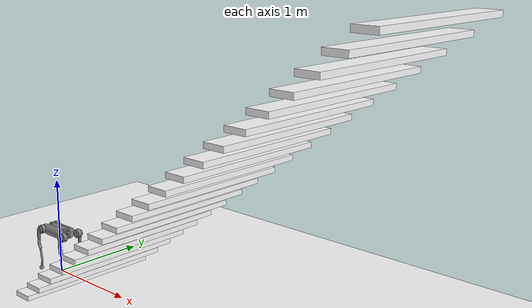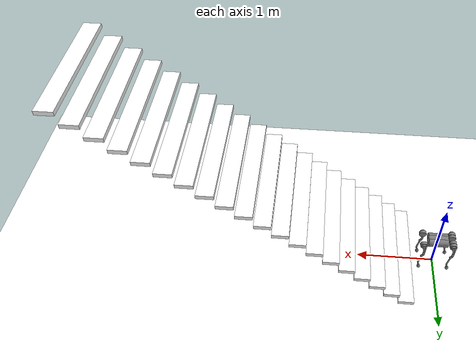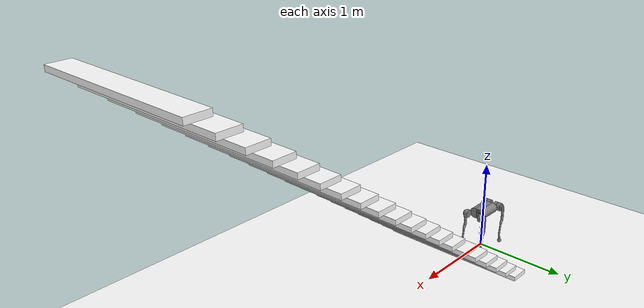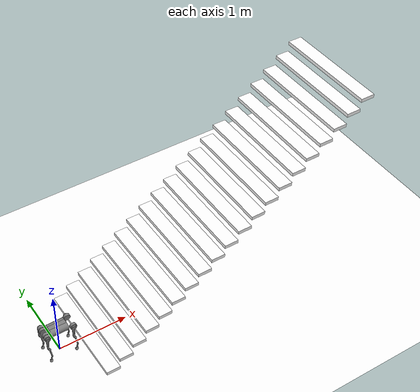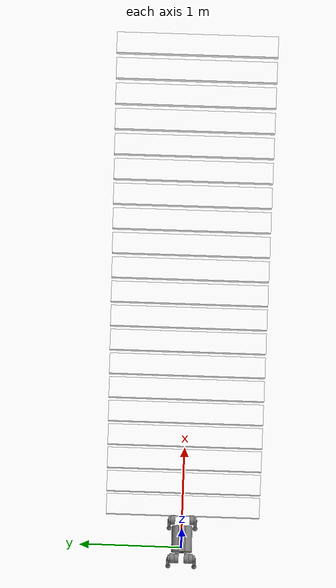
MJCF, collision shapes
<mujoco model="go1 scene">
  <include file="go1_mjx_feetonly.xml"/>

  <statistic center="0 0 0.1" extent="0.8" meansize="0.04"/>

  <visual>
    <headlight diffuse=".8 .8 .8" ambient=".2 .2 .2" specular="1 1 1"/>
    <rgba force="1 0 0 1"/>
    <global azimuth="120" elevation="-20"/>
    <map force="0.01"/>
    <scale forcewidth="0.3" contactwidth="0.5" contactheight="0.2"/>
    <quality shadowsize="8192"/>
  </visual>

  <asset>
    <texture type="skybox" builtin="gradient" rgb1="1 1 1" rgb2="1 1 1" width="800" height="800"/>
    <texture type="2d" name="groundplane" builtin="checker" mark="edge" rgb1="1 1 1" rgb2="1 1 1" markrgb="0 0 0"
      width="300" height="300"/>
    <material name="groundplane" texture="groundplane" texuniform="true" texrepeat="5 5" reflectance="0"/>
    <material name="stairs" rgba="1 1 1 1" reflectance=".8"/>
  </asset>

  <default>
    <default class="stairs">
      <geom material="stairs" contype="1" conaffinity="0"/>
    </default>
  </default>

  <worldbody>
    <geom name="floor" size="0 0 0.01" material="groundplane" type="plane" contype="1" conaffinity="0"/>

    <body name="stairs" pos="0.2 0 0" childclass="stairs">
      <geom pos="0.2 0 0.075" type="box" size="0.1 0.75 0.025"/>
      <geom pos="0.4 0 0.22" type="box" size="0.1 0.75 0.025"/>
      <geom pos="0.6 0 0.375" type="box" size="0.1 0.75 0.025"/>
      <geom pos="0.8 0 0.525" type="box" size="0.1 0.75 0.025"/>
      <geom pos="1.0 0 0.675" type="box" size="0.1 0.75 0.025"/>
      <geom pos="1.2 0 0.825" type="box" size="0.1 0.75 0.025"/>
      <geom pos="1.4 0 0.975" type="box" size="0.1 0.75 0.025"/>
      <geom pos="1.6 0 1.125" type="box" size="0.1 0.75 0.025"/>
      <geom pos="1.8 0 1.275" type="box" size="0.1 0.75 0.025"/>
      <geom pos="2 0 1.42" type="box" size="0.1 0.75 0.025"/>
      <geom pos="2.2 0 1.57" type="box" size="0.1 0.75 0.025"/>
      <geom pos="2.4 0 1.72" type="box" size="0.1 0.75 0.025"/>
      <geom pos="2.6 0 1.87" type="box" size="0.1 0.75 0.025"/>
      <geom pos="2.8 0 2.02" type="box" size="0.1 0.75 0.025"/>
      <geom pos="3 0 2.17" type="box" size="0.1 0.75 0.025"/>
      <geom pos="3.2 0 2.32" type="box" size="0.1 0.75 0.025"/>
      <geom pos="3.4 0 2.47" type="box" size="0.1 0.75 0.025"/>
      <geom pos="3.6 0 2.62" type="box" size="0.1 0.75 0.025"/>
      <geom pos="3.8 0 2.77" type="box" size="0.1 0.75 0.025"/>
      <geom pos="4 0 2.92" type="box" size="0.1 0.75 0.025"/>
    </body>
  </worldbody>

  <keyframe>
    <key name="home" qpos="0 0 0.27 1 0 0 0 0 0.9 -1.8 0 0.9 -1.8 0 0.9 -1.8 0 0.9 -1.8"
      ctrl="0 0.9 -1.8 0 0.9 -1.8 0 0.9 -1.8 0 0.9 -1.8"/>
  </keyframe>
</mujoco>

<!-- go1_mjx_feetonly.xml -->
<mujoco model="go1 feet only">
  <compiler angle="radian" meshdir="../../../../../mujoco_menagerie/unitree_go1/assets" autolimits="true"/>

  <option iterations="1" ls_iterations="5" timestep="0.004" integrator="Euler">
    <flag eulerdamp="disable"/>
  </option>

  <default>
    <default class="go1">
      <!-- This globaly disables all collisions. -->
      <geom condim="1" contype="0" conaffinity="0"/>
      <joint axis="0 1 0" armature="0.005" damping="0.5"/>
      <position forcerange="-23.7 23.7" inheritrange="1" kp="35"/>
      <default class="abduction">
        <joint axis="1 0 0" range="-0.863 0.863" frictionloss="0.3"/>
      </default>
      <default class="hip">
        <joint range="-0.686 4.501" frictionloss="0.3"/>
      </default>
      <default class="knee">
        <joint range="-2.818 -0.888" frictionloss="1.0"/>
        <position forcerange="-35.55 35.55"/>
      </default>
      <default class="visual">
        <geom type="mesh" contype="0" conaffinity="0" group="2" material="dark"/>
      </default>
      <default class="collision">
        <geom group="3" type="capsule"/>
        <default class="hip_left1">
          <geom size="0.046 0.02" pos="0 0.045 0" quat="1 1 0 0" type="cylinder"/>
        </default>
        <default class="hip_left2">
          <geom size="0.031 0.02" pos="0 0.065 0" quat="1 1 0 0" type="cylinder"/>
        </default>
        <default class="hip_left3">
          <geom size="0.046 0.02" quat="1 1 0 0" type="cylinder"/>
        </default>
        <default class="hip_right1">
          <geom size="0.046 0.02" pos="0 -0.045 0" quat="1 1 0 0" type="cylinder"/>
        </default>
        <default class="hip_right2">
          <geom size="0.031 0.02" pos="0 -0.065 0" quat="1 1 0 0" type="cylinder"/>
        </default>
        <default class="hip_right3">
          <geom size="0.046 0.02" quat="1 1 0 0" type="cylinder"/>
        </default>
        <default class="thigh1">
          <geom size="0.015" fromto="-0.02 0 0 -0.02 0 -0.16"/>
        </default>
        <default class="thigh2">
          <geom size="0.015" fromto="0 0 0 -0.02 0 -0.1"/>
        </default>
        <default class="thigh3">
          <geom size="0.015" fromto="-0.02 0 -0.16 0 0 -0.2"/>
        </default>
        <default class="calf1">
          <geom size="0.01" fromto="0 0 0 0.02 0 -0.13"/>
        </default>
        <default class="calf2">
          <geom size="0.01" fromto="0.02 0 -0.13 0 0 -0.2"/>
        </default>
        <default class="foot">
          <geom type="sphere" size="0.023" pos="0 0 -0.213" solimp="0.9 .95 0.023" contype="0" conaffinity="1"/>
        </default>
      </default>
    </default>
  </default>

  <asset>
    <material name="dark" rgba="0.2 0.2 0.2 1"/>
    <mesh class="go1" file="../../../../mujoco_menagerie/unitree_go1/assets/trunk.stl"/>
    <mesh class="go1" file="../../../../mujoco_menagerie/unitree_go1/assets/hip.stl"/>
    <mesh class="go1" file="../../../../mujoco_menagerie/unitree_go1/assets/thigh_mirror.stl"/>
    <mesh class="go1" file="../../../../mujoco_menagerie/unitree_go1/assets/calf.stl"/>
    <mesh class="go1" file="../../../../mujoco_menagerie/unitree_go1/assets/thigh.stl"/>
  </asset>

  <worldbody>
    <light name="spotlight" mode="targetbodycom" target="trunk" pos="3 0 4"/>
    <body name="trunk" pos="0 0 0.445" childclass="go1">
      <camera name="track" pos="0.846 -1.3 0.316" xyaxes="0.866 0.500 0.000 -0.171 0.296 0.940" mode="trackcom"/>
      <camera name="top" pos="-1 0 1" xyaxes="0 -1 0 0.7 0 0.7" mode="trackcom"/>
      <camera name="side" pos="0 -1 .3" xyaxes="1 0 0 0 1 2" mode="trackcom"/>
      <camera name="back" pos="-1 0 .3" xyaxes="0 -1 0 1 0 2" mode="trackcom"/>
      <site name="head" pos="0.3 0 0" rgba="1 0 0 1" size="0.02" group="5"/>
      <inertial pos="0.0223 0.002 -0.0005" quat="-0.00342088 0.705204 0.000106698 0.708996" mass="5.204"
        diaginertia="0.0716565 0.0630105 0.0168101"/>
      <freejoint/>
      <geom class="visual" mesh="trunk"/>
      <geom class="collision" size="0.125 0.04 0.057" type="box"/>
      <geom class="collision" quat="1 0 1 0" pos="0 -0.04 0" size="0.058 0.125" type="cylinder"/>
      <geom class="collision" quat="1 0 1 0" pos="0 +0.04 0" size="0.058 0.125" type="cylinder"/>
      <site name="imu" pos="-0.01592 -0.06659 -0.00617" group="5"/>
      <body name="FR_hip" pos="0.1881 -0.04675 0">
        <inertial pos="-0.0049166 0.00762615 -8.865e-05" quat="0.507341 0.514169 0.495027 0.482891" mass="0.68"
          diaginertia="0.000734064 0.000468438 0.000398719"/>
        <joint class="abduction" name="FR_hip_joint"/>
        <geom class="visual" mesh="hip" quat="1 0 0 0"/>
        <geom class="hip_right1"/>
        <geom class="hip_right2"/>
        <body name="FR_thigh" pos="0 -0.08 0">
          <inertial pos="-0.00304722 0.019315 -0.0305004" quat="0.65243 -0.0272313 0.0775126 0.753383" mass="1.009"
            diaginertia="0.00478717 0.00460903 0.000709268"/>
          <joint class="hip" name="FR_thigh_joint"/>
          <geom class="visual" mesh="thigh_mirror"/>
          <geom class="thigh1"/>
          <geom class="thigh2"/>
          <geom class="thigh3"/>
          <body name="FR_calf" pos="0 0 -0.213">
            <inertial pos="0.00429862 0.000976676 -0.146197" quat="0.691246 0.00357467 0.00511118 0.722592"
              mass="0.195862" diaginertia="0.00149767 0.00148468 3.58427e-05"/>
            <joint class="knee" name="FR_calf_joint"/>
            <geom class="visual" mesh="calf"/>
            <geom class="calf1"/>
            <geom class="calf2"/>
            <geom name="FR" class="foot"/>
            <site name="FR" pos="0 0 -0.213" type="sphere" size="0.023" group="5"/>
          </body>
        </body>
      </body>
      <body name="FL_hip" pos="0.1881 0.04675 0">
        <inertial pos="-0.0049166 -0.00762615 -8.865e-05" quat="0.482891 0.495027 0.514169 0.507341" mass="0.68"
          diaginertia="0.000734064 0.000468438 0.000398719"/>
        <joint class="abduction" name="FL_hip_joint"/>
        <geom class="visual" mesh="hip"/>
        <geom class="hip_left1"/>
        <geom class="hip_left2"/>
        <body name="FL_thigh" pos="0 0.08 0">
          <inertial pos="-0.00304722 -0.019315 -0.0305004" quat="0.753383 0.0775126 -0.0272313 0.65243" mass="1.009"
            diaginertia="0.00478717 0.00460903 0.000709268"/>
          <joint class="hip" name="FL_thigh_joint"/>
          <geom class="visual" mesh="thigh"/>
          <geom class="thigh1"/>
          <geom class="thigh2"/>
          <geom class="thigh3"/>
          <body name="FL_calf" pos="0 0 -0.213">
            <inertial pos="0.00429862 0.000976676 -0.146197" quat="0.691246 0.00357467 0.00511118 0.722592"
              mass="0.195862" diaginertia="0.00149767 0.00148468 3.58427e-05"/>
            <joint class="knee" name="FL_calf_joint"/>
            <geom class="visual" mesh="calf"/>
            <geom class="calf1"/>
            <geom class="calf2"/>
            <geom name="FL" class="foot"/>
            <site name="FL" pos="0 0 -0.213" type="sphere" size="0.023" group="5"/>
          </body>
        </body>
      </body>
      <body name="RR_hip" pos="-0.1881 -0.04675 0">
        <inertial pos="0.0049166 0.00762615 -8.865e-05" quat="0.495027 0.482891 0.507341 0.514169" mass="0.68"
          diaginertia="0.000734064 0.000468438 0.000398719"/>
        <joint class="abduction" name="RR_hip_joint"/>
        <geom class="visual" quat="0 0 0 -1" mesh="hip"/>
        <geom class="hip_right1"/>
        <geom class="hip_right2"/>
        <geom class="hip_right3"/>
        <body name="RR_thigh" pos="0 -0.08 0">
          <inertial pos="-0.00304722 0.019315 -0.0305004" quat="0.65243 -0.0272313 0.0775126 0.753383" mass="1.009"
            diaginertia="0.00478717 0.00460903 0.000709268"/>
          <joint class="hip" name="RR_thigh_joint"/>
          <geom class="visual" mesh="thigh_mirror"/>
          <geom class="thigh1"/>
          <geom class="thigh2"/>
          <geom class="thigh3"/>
          <body name="RR_calf" pos="0 0 -0.213">
            <inertial pos="0.00429862 0.000976676 -0.146197" quat="0.691246 0.00357467 0.00511118 0.722592"
              mass="0.195862" diaginertia="0.00149767 0.00148468 3.58427e-05"/>
            <joint class="knee" name="RR_calf_joint"/>
            <geom class="visual" mesh="calf"/>
            <geom class="calf1"/>
            <geom class="calf2"/>
            <geom name="RR" class="foot"/>
            <site name="RR" pos="0 0 -0.213" type="sphere" size="0.023" group="5"/>
          </body>
        </body>
      </body>
      <body name="RL_hip" pos="-0.1881 0.04675 0">
        <inertial pos="0.0049166 -0.00762615 -8.865e-05" quat="0.514169 0.507341 0.482891 0.495027" mass="0.68"
          diaginertia="0.000734064 0.000468438 0.000398719"/>
        <joint class="abduction" name="RL_hip_joint"/>
        <geom class="visual" quat="0 0 1 0" mesh="hip"/>
        <geom class="hip_left1"/>
        <geom class="hip_left2"/>
        <geom class="hip_left3"/>
        <body name="RL_thigh" pos="0 0.08 0">
          <inertial pos="-0.00304722 -0.019315 -0.0305004" quat="0.753383 0.0775126 -0.0272313 0.65243" mass="1.009"
            diaginertia="0.00478717 0.00460903 0.000709268"/>
          <joint class="hip" name="RL_thigh_joint"/>
          <geom class="visual" mesh="thigh"/>
          <geom class="thigh1"/>
          <geom class="thigh2"/>
          <geom class="thigh3"/>
          <body name="RL_calf" pos="0 0 -0.213">
            <inertial pos="0.00429862 0.000976676 -0.146197" quat="0.691246 0.00357467 0.00511118 0.722592"
              mass="0.195862" diaginertia="0.00149767 0.00148468 3.58427e-05"/>
            <joint class="knee" name="RL_calf_joint"/>
            <geom class="visual" mesh="calf"/>
            <geom class="calf1"/>
            <geom class="calf2"/>
            <geom name="RL" class="foot"/>
            <site name="RL" pos="0 0 -0.213" type="sphere" size="0.023" group="5"/>
          </body>
        </body>
      </body>
    </body>
  </worldbody>

  <actuator>
    <position class="abduction" name="FR_hip" joint="FR_hip_joint"/>
    <position class="hip" name="FR_thigh" joint="FR_thigh_joint"/>
    <position class="knee" name="FR_calf" joint="FR_calf_joint"/>
    <position class="abduction" name="FL_hip" joint="FL_hip_joint"/>
    <position class="hip" name="FL_thigh" joint="FL_thigh_joint"/>
    <position class="knee" name="FL_calf" joint="FL_calf_joint"/>
    <position class="abduction" name="RR_hip" joint="RR_hip_joint"/>
    <position class="hip" name="RR_thigh" joint="RR_thigh_joint"/>
    <position class="knee" name="RR_calf" joint="RR_calf_joint"/>
    <position class="abduction" name="RL_hip" joint="RL_hip_joint"/>
    <position class="hip" name="RL_thigh" joint="RL_thigh_joint"/>
    <position class="knee" name="RL_calf" joint="RL_calf_joint"/>
  </actuator>

  <sensor>
    <gyro site="imu" name="gyro"/>
    <velocimeter site="imu" name="local_linvel"/>
    <accelerometer site="imu" name="accelerometer"/>
    <framepos objtype="site" objname="imu" name="position"/>
    <framezaxis objtype="site" objname="imu" name="upvector"/>
    <framexaxis objtype="site" objname="imu" name="forwardvector"/>
    <framelinvel objtype="site" objname="imu" name="global_linvel"/>
    <frameangvel objtype="site" objname="imu" name="global_angvel"/>
    <framequat objtype="site" objname="imu" name="orientation"/>
    <framelinvel objtype="site" objname="FR" name="FR_global_linvel"/>
    <framelinvel objtype="site" objname="FL" name="FL_global_linvel"/>
    <framelinvel objtype="site" objname="RR" name="RR_global_linvel"/>
    <framelinvel objtype="site" objname="RL" name="RL_global_linvel"/>
    <framepos objtype="site" objname="FR" name="FR_pos" reftype="site" refname="imu"/>
    <framepos objtype="site" objname="FL" name="FL_pos" reftype="site" refname="imu"/>
    <framepos objtype="site" objname="RR" name="RR_pos" reftype="site" refname="imu"/>
    <framepos objtype="site" objname="RL" name="RL_pos" reftype="site" refname="imu"/>
  </sensor>
</mujoco>
